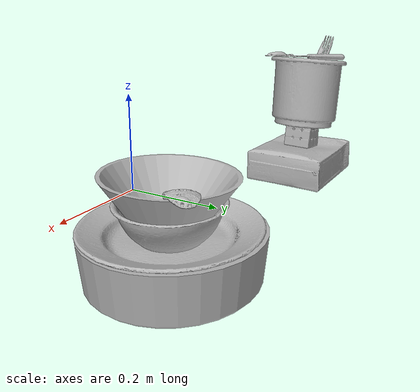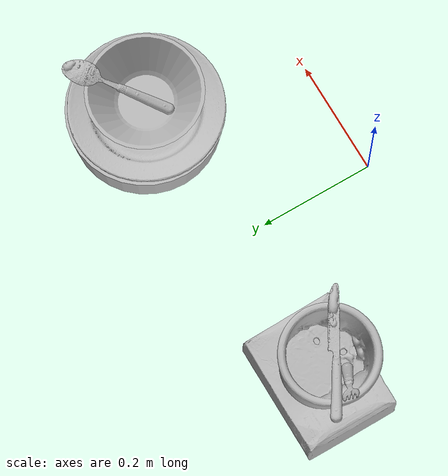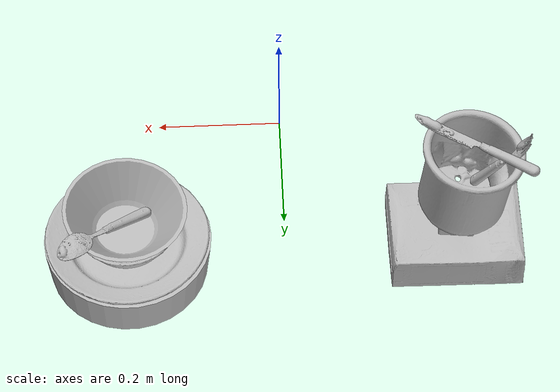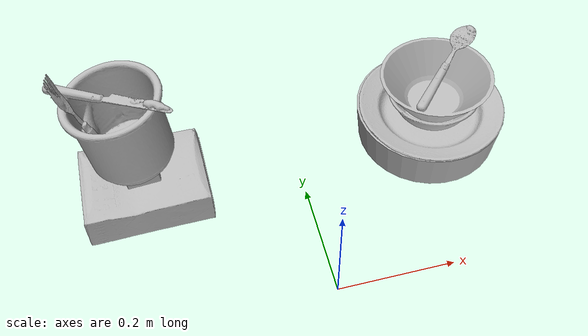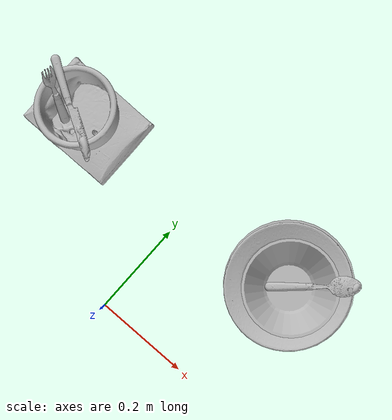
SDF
<?xml version="1.0" ?>
<sdf version="1.4">

  <world name="default">

    <light name="light1" type="point">

      <pose>0 0 1 0 0 0</pose>

      <diffuse>3 3 3 1</diffuse>

      <specular>3 3 3 1</specular>

    </light>

    <light name="light2" type="point">

      <pose>0 0.5 2 0 0 0</pose>

      <diffuse>1 1 1 1</diffuse>

      <specular>1 1 1 1</specular>

    </light>

    <light name="light3" type="point">

      <pose>0 0.5 2 0 0 0</pose>

      <diffuse>3 3 3 1</diffuse>

      <specular>3 3 3 1</specular>

    </light>

    <scene>

      <ambient>0.7 0.7 0.7</ambient>

    </scene>

    <model name="plate1">

      <link name="link_plate1">

        <collision name="default">

          <geometry>

            <mesh>

              <uri>model://pan_tefal/collision_meshes/collision.obj</uri>

              <scale>1.0 1.0 1.0</scale>

            </mesh>

          </geometry>

          <surface>

            <friction>

              <ode>

                <mu>0.5</mu>

                <mu2>0.5</mu2>

              </ode>

            </friction>

          </surface>

        </collision>

        <visual name="default">

          <geometry>

            <mesh>

              <uri>model://pan_tefal/visual_meshes/visual.dae</uri>

              <scale>1.0 1.0 1.0</scale>

            </mesh>

          </geometry>

        </visual>

        <inertial>

          <mass>0.7575002908706665</mass>

          <pose>-0.00018002181604970247 3.278869189671241e-05 -0.00851493701338768 0.0008190213215647545 -0.0003301469994364688 -0.3318472895374236</pose>

          <inertia>

            <ixx>0.0052289874</ixx>

            <iyy>0.0052627004</iyy>

            <izz>0.009625561</izz>

            <ixy>0</ixy>

            <ixz>0</ixz>

            <iyz>0</iyz>

          </inertia>

        </inertial>

      </link>

      <pose>0.25167739391326904 0.2787894308567047 0.03797030821442604 -0.00047155279422057833 -0.0004424773697068299 0.016046669004873046</pose>

    </model>

    <model name="plate2">

      <link name="link_plate2">

        <collision name="default">

          <geometry>

            <mesh>

              <uri>model://plate/collision_meshes/collision.obj</uri>

              <scale>1.0 1.0 1.0</scale>

            </mesh>

          </geometry>

          <surface>

            <friction>

              <ode>

                <mu>0.5</mu>

                <mu2>0.5</mu2>

              </ode>

            </friction>

          </surface>

        </collision>

        <visual name="default">

          <geometry>

            <mesh>

              <uri>model://plate/visual_meshes/visual.dae</uri>

              <scale>1.0 1.0 1.0</scale>

            </mesh>

          </geometry>

        </visual>

        <inertial>

          <mass>0.24305373430252075</mass>

          <pose>-0.0006044657784514129 0.0002782582014333457 -0.0010561988456174731 0.0022187349237576767 -0.0032255124479001144 0.4526250186623527</pose>

          <inertia>

            <ixx>0.00113701</ixx>

            <iyy>0.0011261352</iyy>

            <izz>0.0022238225</izz>

            <ixy>0</ixy>

            <ixz>0</ixz>

            <iyz>0</iyz>

          </inertia>

        </inertial>

      </link>

      <pose>0.25203272700309753 0.2760974168777466 0.06947684288024902 -0.003110257124179129 0.008406229833957309 -0.026394755762931998</pose>

    </model>

    <model name="bowl1">

      <link name="link_bowl1">

        <collision name="default">

          <geometry>

            <mesh>

              <uri>model://bowl/collision_meshes/collision.obj</uri>

              <scale>1.0 1.0 1.0</scale>

            </mesh>

          </geometry>

          <surface>

            <friction>

              <ode>

                <mu>0.5</mu>

                <mu2>0.5</mu2>

              </ode>

            </friction>

          </surface>

        </collision>

        <visual name="default">

          <geometry>

            <mesh>

              <uri>model://bowl/visual_meshes/visual.dae</uri>

              <scale>1.0 1.0 1.0</scale>

            </mesh>

          </geometry>

        </visual>

        <inertial>

          <mass>0.08028676360845566</mass>

          <pose>0.00020445045083761215 -0.0010302026057615876 -0.0008042661938816309 -0.015764207515600946 0.014546645366850262 0.7140316236369888</pose>

          <inertia>

            <ixx>0.00018442512</ixx>

            <iyy>0.00018030431</iyy>

            <izz>0.0003102665</izz>

            <ixy>0</ixy>

            <ixz>0</ixz>

            <iyz>0</iyz>

          </inertia>

        </inertial>

      </link>

      <pose>0.2527181804180145 0.2759464979171753 0.08759289234876633 -0.0009042648904201939 -0.0020987905986500485 -0.031745910588546096</pose>

    </model>

    <model name="bowl2">

      <link name="link_bowl2">

        <collision name="default">

          <geometry>

            <mesh>

              <uri>model://bowl_a/collision_meshes/collision.obj</uri>

              <scale>1.0 1.0 1.0</scale>

            </mesh>

          </geometry>

          <surface>

            <friction>

              <ode>

                <mu>0.5</mu>

                <mu2>0.5</mu2>

              </ode>

            </friction>

          </surface>

        </collision>

        <visual name="default">

          <geometry>

            <mesh>

              <uri>model://bowl_a/visual_meshes/visual.dae</uri>

              <scale>1.0 1.0 1.0</scale>

            </mesh>

          </geometry>

        </visual>

        <inertial>

          <mass>0.2016693353652954</mass>

          <pose>0.000278673687716946 4.731108856503852e-05 -0.0013765295734629035 -0.0009805301894988984 -0.0010938186520021772 -0.19123883274053055</pose>

          <inertia>

            <ixx>0.00057416206</ixx>

            <iyy>0.000577687</iyy>

            <izz>0.0010211696</izz>

            <ixy>0</ixy>

            <ixz>0</ixz>

            <iyz>0</iyz>

          </inertia>

        </inertial>

      </link>

      <pose>0.2538543939590454 0.2758866250514984 0.12258895486593246 -0.03600483280458276 -0.021628693534002263 0.006906832692897257</pose>

    </model>

    <model name="silverware1">

      <link name="link_silverware1">

        <collision name="default">

          <geometry>

            <mesh>

              <uri>model://spoon/collision_meshes/collision.obj</uri>

              <scale>1.0 1.0 1.0</scale>

            </mesh>

          </geometry>

          <surface>

            <friction>

              <ode>

                <mu>0.5</mu>

                <mu2>0.5</mu2>

              </ode>

            </friction>

          </surface>

        </collision>

        <visual name="default">

          <geometry>

            <mesh>

              <uri>model://spoon/visual_meshes/visual.dae</uri>

              <scale>1.0 1.0 1.0</scale>

            </mesh>

          </geometry>

        </visual>

        <inertial>

          <mass>0.023438503965735435</mass>

          <pose>-0.005526317749172449 -0.0016034176805987954 -0.000727164966519922 0.03521671071703309 -0.03906584129558259 0.006150610048623938</pose>

          <inertia>

            <ixx>1.3036873e-06</ixx>

            <iyy>8.918272e-05</iyy>

            <izz>8.982564e-05</izz>

            <ixy>0</ixy>

            <ixz>0</ixz>

            <iyz>0</iyz>

          </inertia>

        </inertial>

      </link>

      <pose>0.2853468358516693 0.30633506178855896 0.1385222226381302 3.0470979941165437 -0.37753848695770253 0.7430212492869993</pose>

    </model>

    <model name="box1">

      <link name="link_box1">

        <collision name="default">

          <geometry>

            <mesh>

              <uri>model://cracker_box/collision_meshes/collision.obj</uri>

              <scale>1.0 1.0 1.0</scale>

            </mesh>

          </geometry>

          <surface>

            <friction>

              <ode>

                <mu>0.5</mu>

                <mu2>0.5</mu2>

              </ode>

            </friction>

          </surface>

        </collision>

        <visual name="default">

          <geometry>

            <mesh>

              <uri>model://cracker_box/visual_meshes/visual.dae</uri>

              <scale>1.0 1.0 1.0</scale>

            </mesh>

          </geometry>

        </visual>

        <inertial>

          <mass>3.1733922958374023</mass>

          <pose>0.0009464119793847203 0.00025434247800149024 -0.0017029535956680775 -0.00031620768891544627 -0.011106485874643508 0.0025467963987026074</pose>

          <inertia>

            <ixx>0.008071693</ixx>

            <iyy>0.013327951</iyy>

            <izz>0.01902021</izz>

            <ixy>0</ixy>

            <ixz>0</ixz>

            <iyz>0</iyz>

          </inertia>

        </inertial>

      </link>

      <pose>-0.27024364471435547 0.2604706883430481 0.0364818200469017 -0.011789585240178955 -0.007366752976558596 0.0005357940066248247</pose>

    </model>

    <model name="box2">

      <link name="link_box2">

        <collision name="default">

          <geometry>

            <mesh>

              <uri>model://rubiks_cube/collision_meshes/collision.obj</uri>

              <scale>1.0 1.0 1.0</scale>

            </mesh>

          </geometry>

          <surface>

            <friction>

              <ode>

                <mu>0.5</mu>

                <mu2>0.5</mu2>

              </ode>

            </friction>

          </surface>

        </collision>

        <visual name="default">

          <geometry>

            <mesh>

              <uri>model://rubiks_cube/visual_meshes/visual.dae</uri>

              <scale>1.0 1.0 1.0</scale>

            </mesh>

          </geometry>

        </visual>

        <inertial>

          <mass>0.15184316039085388</mass>

          <pose>2.6721041649580002e-05 5.2569666877388954e-05 -7.264316536748083e-06 -0.0546734747968529 -0.09813870099197174 -0.03445517010401606</pose>

          <inertia>

            <ixx>8.390353e-05</ixx>

            <iyy>8.351226e-05</iyy>

            <izz>8.459882e-05</izz>

            <ixy>0</ixy>

            <ixz>0</ixz>

            <iyz>0</iyz>

          </inertia>

        </inertial>

      </link>

      <pose>-0.27284079790115356 0.2614058256149292 0.09595935791730881 3.120292603946104 -0.1238462776532365 -0.013800455756455185</pose>

    </model>

    <model name="cup1">

      <link name="link_cup1">

        <collision name="default">

          <geometry>

            <mesh>

              <uri>model://f_cups/collision_meshes/collision.obj</uri>

              <scale>2.0 2.0 2.0</scale>

            </mesh>

          </geometry>

          <surface>

            <friction>

              <ode>

                <mu>0.5</mu>

                <mu2>0.5</mu2>

              </ode>

            </friction>

          </surface>

        </collision>

        <visual name="default">

          <geometry>

            <mesh>

              <uri>model://f_cups/visual_meshes/visual.dae</uri>

              <scale>2.0 2.0 2.0</scale>

            </mesh>

          </geometry>

        </visual>

        <inertial>

          <mass>0.31799542903900146</mass>

          <pose>-0.006342939101159573 -0.0012480145087465644 -0.00731107359752059 0.7862267301708457 -0.2607925342729672 -0.18237300859269054</pose>

          <inertia>

            <ixx>0.0011956966</ixx>

            <iyy>0.0012542997</iyy>

            <izz>0.001305761</izz>

            <ixy>0</ixy>

            <ixz>0</ixz>

            <iyz>0</iyz>

          </inertia>

        </inertial>

      </link>

      <pose>-0.2828943431377411 0.2623918056488037 0.18573272228240967 -0.014402360357703937 -0.12120382096353592 0.014850612654743512</pose>

    </model>

    <model name="silverware2">

      <link name="link_silverware2">

        <collision name="default">

          <geometry>

            <mesh>

              <uri>model://knife/collision_meshes/collision.obj</uri>

              <scale>1.0 1.0 1.0</scale>

            </mesh>

          </geometry>

          <surface>

            <friction>

              <ode>

                <mu>0.5</mu>

                <mu2>0.5</mu2>

              </ode>

            </friction>

          </surface>

        </collision>

        <visual name="default">

          <geometry>

            <mesh>

              <uri>model://knife/visual_meshes/visual.dae</uri>

              <scale>1.0 1.0 1.0</scale>

            </mesh>

          </geometry>

        </visual>

        <inertial>

          <mass>0.01713745854794979</mass>

          <pose>-0.02378525771200657 0.0015275123296305537 5.062021591584198e-05 0.07305753061421462 0.017248419855317693 -0.007409818535045194</pose>

          <inertia>

            <ixx>4.864306e-07</ixx>

            <iyy>6.583934e-05</iyy>

            <izz>6.5996e-05</izz>

            <ixy>0</ixy>

            <ixz>0</ixz>

            <iyz>0</iyz>

          </inertia>

        </inertial>

      </link>

      <pose>-0.2937959134578705 0.25775107741355896 0.2624519169330597 -3.1366701414523432 -0.06407773019950079 -0.5282139773642881</pose>

    </model>

    <model name="silverware3">

      <link name="link_silverware3">

        <collision name="default">

          <geometry>

            <mesh>

              <uri>model://fork/collision_meshes/collision.obj</uri>

              <scale>1.0 1.0 1.0</scale>

            </mesh>

          </geometry>

          <surface>

            <friction>

              <ode>

                <mu>0.5</mu>

                <mu2>0.5</mu2>

              </ode>

            </friction>

          </surface>

        </collision>

        <visual name="default">

          <geometry>

            <mesh>

              <uri>model://fork/visual_meshes/visual.dae</uri>

              <scale>1.0 1.0 1.0</scale>

            </mesh>

          </geometry>

        </visual>

        <inertial>

          <mass>0.012323527596890926</mass>

          <pose>-0.029570043087005615 0.00046588233090005815 0.0003218861238565296 -0.013551145261099908 -0.01097783717976447 0.01445390335153306</pose>

          <inertia>

            <ixx>4.3200933e-07</ixx>

            <iyy>3.2173175e-05</iyy>

            <izz>3.236641e-05</izz>

            <ixy>0</ixy>

            <ixz>0</ixz>

            <iyz>0</iyz>

          </inertia>

        </inertial>

      </link>

      <pose>-0.3381776213645935 0.25621965527534485 0.21456477046012878 0.4071681641127555 -1.0451027043326204 2.5786468547958057</pose>

    </model>

  </world>

</sdf>
